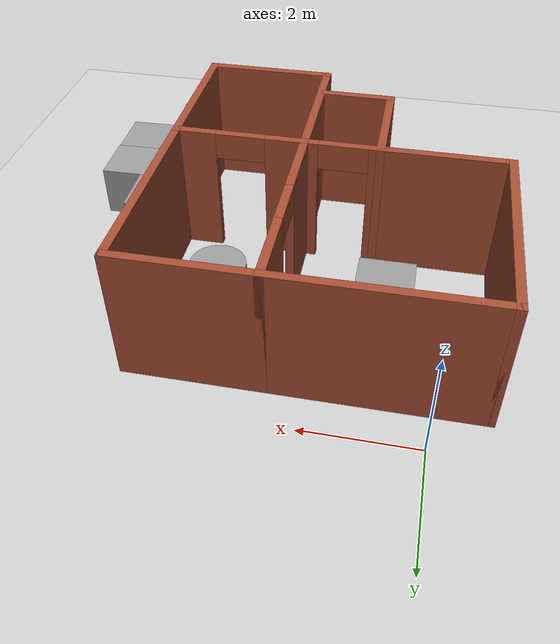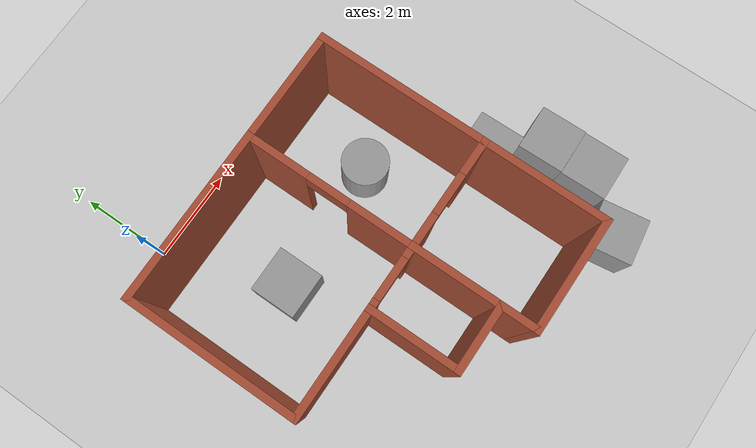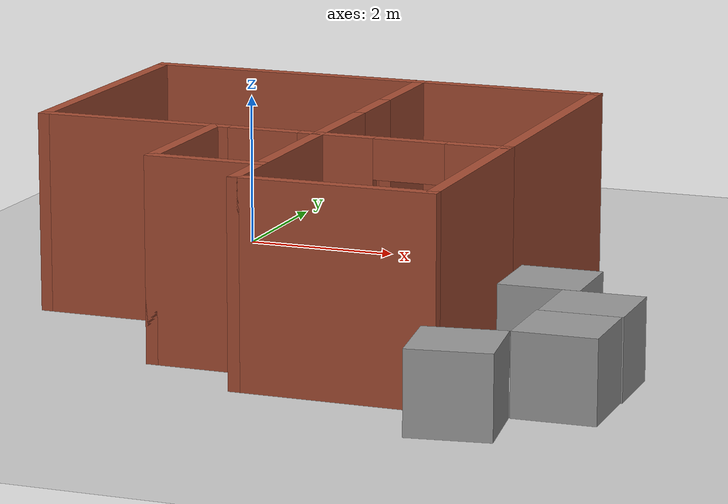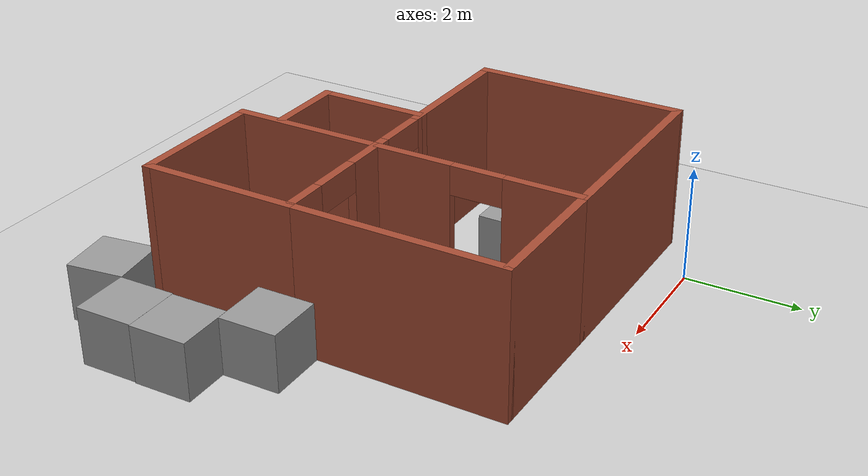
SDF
<sdf version="1.6">
 <world name="default">
  <light name="sun" type="directional">
   <pose>0 0 10 0 -0 0</pose>
   <diffuse>0.8 0.8 0.8 1</diffuse>
   <specular>0.2 0.2 0.2 1</specular>
   <attenuation>
    <range>1000</range>
    <constant>0.9</constant>
    <linear>0.01</linear>
    <quadratic>0.001</quadratic>
   </attenuation>
   <direction>-0.5 0.1 -0.9</direction>
  </light>
  <model name="ground_plane">
   <static>1</static>
   <link name="link">
    <collision name="collision">
     <geometry><plane><normal>0 0 1</normal><size>100 100</size></plane></geometry>
     <surface>
      <contact><collide_bitmask>65535</collide_bitmask></contact>
      <friction><ode><mu>100</mu><mu2>50</mu2></ode></friction>
     </surface>
    </collision>
    <visual name="visual">
     <cast_shadows>0</cast_shadows>
     <geometry><plane><normal>0 0 1</normal><size>100 100</size></plane></geometry>
     <material>
      <script><uri>file://media/materials/scripts/gazebo.material</uri><name>Gazebo/Grey</name></script>
     </material>
    </visual>
   </link>
  </model>
  <gravity>0 0 -9.8</gravity>
  <magnetic_field>6e-06 2.3e-05 -4.2e-05</magnetic_field>
  <atmosphere type="adiabatic"/>
  <physics name="default_physics" default="0" type="ode">
   <max_step_size>0.001</max_step_size>
   <real_time_factor>1</real_time_factor>
   <real_time_update_rate>1000</real_time_update_rate>
  </physics>
  <scene><ambient>0.4 0.4 0.4 1</ambient><background>0.7 0.7 0.7 1</background><shadows>1</shadows></scene>
  <audio><device>default</device></audio>
  <spherical_coordinates>
   <surface_model>EARTH_WGS84</surface_model>
   <latitude_deg>0</latitude_deg>
   <longitude_deg>0</longitude_deg>
   <elevation>0</elevation>
   <heading_deg>0</heading_deg>
  </spherical_coordinates>
  <model name="SmallHouse">
   <pose>2.015 -3.81 0 0 -0 0</pose>
   <link name="Wall_0">
    <collision name="Wall_0_Collision">
     <geometry><box><size>3.75 0.15 2.5</size></box></geometry>
     <pose>0 0 1.25 0 -0 0</pose>
    </collision>
    <visual name="Wall_0_Visual">
     <pose>0 0 1.25 0 -0 0</pose>
     <geometry><box><size>3.75 0.15 2.5</size></box></geometry>
     <material>
      <script><uri>file://media/materials/scripts/gazebo.material</uri><name>Gazebo/Bricks</name></script>
      <ambient>1 1 1 1</ambient>
     </material>
     <meta><layer>0</layer></meta>
    </visual>
    <pose>-1.175 3.1 0 0 -0 0</pose>
   </link>
   <link name="Wall_10">
    <pose>1.8 -0.5 0 0 -0 3.14159</pose>
    <visual name="Wall_10_Visual_0">
     <pose>-0.843815 0 1.25 0 -0 0</pose>
     <geometry><box><size>0.81237 0.15 2.5</size></box></geometry>
     <material>
      <script><uri>file://media/materials/scripts/gazebo.material</uri><name>Gazebo/Bricks</name></script>
      <ambient>1 1 1 1</ambient>
     </material>
     <meta><layer>0</layer></meta>
    </visual>
    <collision name="Wall_10_Collision_0">
     <geometry><box><size>0.81237 0.15 2.5</size></box></geometry>
     <pose>-0.843815 0 1.25 0 -0 0</pose>
    </collision>
    <visual name="Wall_10_Visual_1">
     <pose>0.856185 0 1.25 0 -0 0</pose>
     <geometry><box><size>0.78763 0.15 2.5</size></box></geometry>
     <material>
      <script><uri>file://media/materials/scripts/gazebo.material</uri><name>Gazebo/Bricks</name></script>
      <ambient>1 1 1 1</ambient>
     </material>
     <meta><layer>0</layer></meta>
    </visual>
    <collision name="Wall_10_Collision_1">
     <geometry><box><size>0.78763 0.15 2.5</size></box></geometry>
     <pose>0.856185 0 1.25 0 -0 0</pose>
    </collision>
    <visual name="Wall_10_Visual_2">
     <pose>0.01237 0 2.25 0 -0 0</pose>
     <geometry><box><size>0.9 0.15 0.5</size></box></geometry>
     <material>
      <script><uri>file://media/materials/scripts/gazebo.material</uri><name>Gazebo/Bricks</name></script>
      <ambient>1 1 1 1</ambient>
     </material>
     <meta><layer>0</layer></meta>
    </visual>
    <collision name="Wall_10_Collision_2">
     <geometry><box><size>0.9 0.15 0.5</size></box></geometry>
     <pose>0.01237 0 2.25 0 -0 0</pose>
    </collision>
   </link>
   <link name="Wall_12">
    <pose>-1.175 -0.5 0 0 -0 3.14159</pose>
    <visual name="Wall_12_Visual_0">
     <pose>-1.71232 0 1.25 0 -0 0</pose>
     <geometry><box><size>0.32537 0.15 2.5</size></box></geometry>
     <material>
      <script><uri>file://media/materials/scripts/gazebo.material</uri><name>Gazebo/Bricks</name></script>
      <ambient>1 1 1 1</ambient>
     </material>
     <meta><layer>0</layer></meta>
    </visual>
    <collision name="Wall_12_Collision_0">
     <geometry><box><size>0.32537 0.15 2.5</size></box></geometry>
     <pose>-1.71232 0 1.25 0 -0 0</pose>
    </collision>
    <visual name="Wall_12_Visual_1">
     <pose>0.612685 0 1.25 0 -0 0</pose>
     <geometry><box><size>2.52463 0.15 2.5</size></box></geometry>
     <material>
      <script><uri>file://media/materials/scripts/gazebo.material</uri><name>Gazebo/Bricks</name></script>
      <ambient>1 1 1 1</ambient>
     </material>
     <meta><layer>0</layer></meta>
    </visual>
    <collision name="Wall_12_Collision_1">
     <geometry><box><size>2.52463 0.15 2.5</size></box></geometry>
     <pose>0.612685 0 1.25 0 -0 0</pose>
    </collision>
    <visual name="Wall_12_Visual_2">
     <pose>-1.09963 0 2.25 0 -0 0</pose>
     <geometry><box><size>0.9 0.15 0.5</size></box></geometry>
     <material>
      <script><uri>file://media/materials/scripts/gazebo.material</uri><name>Gazebo/Bricks</name></script>
      <ambient>1 1 1 1</ambient>
     </material>
     <meta><layer>0</layer></meta>
    </visual>
    <collision name="Wall_12_Collision_2">
     <geometry><box><size>0.9 0.15 0.5</size></box></geometry>
     <pose>-1.09963 0 2.25 0 -0 0</pose>
    </collision>
   </link>
   <link name="Wall_16">
    <collision name="Wall_16_Collision">
     <geometry><box><size>2.75 0.15 2.5</size></box></geometry>
     <pose>0 0 1.25 0 -0 0</pose>
    </collision>
    <visual name="Wall_16_Visual">
     <pose>0 0 1.25 0 -0 0</pose>
     <geometry><box><size>2.75 0.15 2.5</size></box></geometry>
     <material>
      <script><uri>file://media/materials/scripts/gazebo.material</uri><name>Gazebo/Bricks</name></script>
      <ambient>1 1 1 1</ambient>
     </material>
     <meta><layer>0</layer></meta>
    </visual>
    <pose>2.975 -1.8 0 0 -0 -1.5708</pose>
   </link>
   <link name="Wall_17">
    <collision name="Wall_17_Collision">
     <geometry><box><size>2.5 0.15 2.5</size></box></geometry>
     <pose>0 0 1.25 0 -0 0</pose>
    </collision>
    <visual name="Wall_17_Visual">
     <pose>0 0 1.25 0 -0 0</pose>
     <geometry><box><size>2.5 0.15 2.5</size></box></geometry>
     <material>
      <script><uri>file://media/materials/scripts/gazebo.material</uri><name>Gazebo/Bricks</name></script>
      <ambient>1 1 1 1</ambient>
     </material>
     <meta><layer>0</layer></meta>
    </visual>
    <pose>1.8 -3.1 0 0 -0 3.14159</pose>
   </link>
   <link name="Wall_18">
    <collision name="Wall_18_Collision">
     <geometry><box><size>2.75 0.15 2.5</size></box></geometry>
     <pose>0 0 1.25 0 -0 0</pose>
    </collision>
    <visual name="Wall_18_Visual">
     <pose>0 0 1.25 0 -0 0</pose>
     <geometry><box><size>2.75 0.15 2.5</size></box></geometry>
     <material>
      <script><uri>file://media/materials/scripts/gazebo.material</uri><name>Gazebo/Bricks</name></script>
      <ambient>1 1 1 1</ambient>
     </material>
     <meta><layer>0</layer></meta>
    </visual>
    <pose>0.625 -1.8 0 0 -0 1.5708</pose>
   </link>
   <link name="Wall_21">
    <collision name="Wall_21_Collision">
     <geometry><box><size>2 0.15 2.5</size></box></geometry>
     <pose>0 0 1.25 0 -0 0</pose>
    </collision>
    <visual name="Wall_21_Visual">
     <pose>0 0 1.25 0 -0 0</pose>
     <geometry><box><size>2 0.15 2.5</size></box></geometry>
     <material>
      <script><uri>file://media/materials/scripts/gazebo.material</uri><name>Gazebo/Bricks</name></script>
      <ambient>1 1 1 1</ambient>
     </material>
     <meta><layer>0</layer></meta>
    </visual>
    <pose>-0.725 -1.425 0 0 -0 -1.5708</pose>
   </link>
   <link name="Wall_22">
    <collision name="Wall_22_Collision">
     <geometry><box><size>1.5 0.15 2.5</size></box></geometry>
     <pose>0 0 1.25 0 -0 0</pose>
    </collision>
    <visual name="Wall_22_Visual">
     <pose>0 0 1.25 0 -0 0</pose>
     <geometry><box><size>1.5 0.15 2.5</size></box></geometry>
     <material>
      <script><uri>file://media/materials/scripts/gazebo.material</uri><name>Gazebo/Bricks</name></script>
      <ambient>1 1 1 1</ambient>
     </material>
     <meta><layer>0</layer></meta>
    </visual>
    <pose>-0.05 -2.35 0 0 -0 0</pose>
   </link>
   <link name="Wall_3">
    <collision name="Wall_3_Collision">
     <geometry><box><size>3.75 0.15 2.5</size></box></geometry>
     <pose>0 0 1.25 0 -0 0</pose>
    </collision>
    <visual name="Wall_3_Visual">
     <pose>0 0 1.25 0 -0 0</pose>
     <geometry><box><size>3.75 0.15 2.5</size></box></geometry>
     <material>
      <script><uri>file://media/materials/scripts/gazebo.material</uri><name>Gazebo/Bricks</name></script>
      <ambient>1 1 1 1</ambient>
     </material>
     <meta><layer>0</layer></meta>
    </visual>
    <pose>-2.975 1.3 0 0 -0 -1.5708</pose>
   </link>
   <link name="Wall_5">
    <pose>0.625 1.3 0 0 -0 -1.5708</pose>
    <visual name="Wall_5_Visual_0">
     <pose>-1.17725 0 1.25 0 -0 0</pose>
     <geometry><box><size>1.3955 0.15 2.5</size></box></geometry>
     <material>
      <script><uri>file://media/materials/scripts/gazebo.material</uri><name>Gazebo/Bricks</name></script>
      <ambient>1 1 1 1</ambient>
     </material>
     <meta><layer>0</layer></meta>
    </visual>
    <collision name="Wall_5_Collision_0">
     <geometry><box><size>1.3955 0.15 2.5</size></box></geometry>
     <pose>-1.17725 0 1.25 0 -0 0</pose>
    </collision>
    <visual name="Wall_5_Visual_1">
     <pose>1.14775 0 1.25 0 -0 0</pose>
     <geometry><box><size>1.4545 0.15 2.5</size></box></geometry>
     <material>
      <script><uri>file://media/materials/scripts/gazebo.material</uri><name>Gazebo/Bricks</name></script>
      <ambient>1 1 1 1</ambient>
     </material>
     <meta><layer>0</layer></meta>
    </visual>
    <collision name="Wall_5_Collision_1">
     <geometry><box><size>1.4545 0.15 2.5</size></box></geometry>
     <pose>1.14775 0 1.25 0 -0 0</pose>
    </collision>
    <visual name="Wall_5_Visual_2">
     <pose>-0.0295 0 2.25 0 -0 0</pose>
     <geometry><box><size>0.9 0.15 0.5</size></box></geometry>
     <material>
      <script><uri>file://media/materials/scripts/gazebo.material</uri><name>Gazebo/Bricks</name></script>
      <ambient>1 1 1 1</ambient>
     </material>
     <meta><layer>0</layer></meta>
    </visual>
    <collision name="Wall_5_Collision_2">
     <geometry><box><size>0.9 0.15 0.5</size></box></geometry>
     <pose>-0.0295 0 2.25 0 -0 0</pose>
    </collision>
   </link>
   <link name="Wall_7">
    <collision name="Wall_7_Collision">
     <geometry><box><size>2.5 0.15 2.5</size></box></geometry>
     <pose>0 0 1.25 0 -0 0</pose>
    </collision>
    <visual name="Wall_7_Visual">
     <pose>0 0 1.25 0 -0 0</pose>
     <geometry><box><size>2.5 0.15 2.5</size></box></geometry>
     <material>
      <script><uri>file://media/materials/scripts/gazebo.material</uri><name>Gazebo/Bricks</name></script>
      <ambient>1 1 1 1</ambient>
     </material>
     <meta><layer>0</layer></meta>
    </visual>
    <pose>1.8 3.1 0 0 -0 0</pose>
   </link>
   <link name="Wall_8">
    <collision name="Wall_8_Collision">
     <geometry><box><size>3.75 0.15 2.5</size></box></geometry>
     <pose>0 0 1.25 0 -0 0</pose>
    </collision>
    <visual name="Wall_8_Visual">
     <pose>0 0 1.25 0 -0 0</pose>
     <geometry><box><size>3.75 0.15 2.5</size></box></geometry>
     <material>
      <script><uri>file://media/materials/scripts/gazebo.material</uri><name>Gazebo/Bricks</name></script>
      <ambient>1 1 1 1</ambient>
     </material>
     <meta><layer>0</layer></meta>
    </visual>
    <pose>2.975 1.3 0 0 -0 -1.5708</pose>
   </link>
   <static>1</static>
  </model>
  <model name="unit_box">
   <pose>0.931544 -2.61707 0.499995 1e-05 -0 0</pose>
   <link name="link">
    <inertial>
     <mass>1</mass>
     <inertia>
      <ixx>0.166667</ixx>
      <ixy>0</ixy>
      <ixz>0</ixz>
      <iyy>0.166667</iyy>
      <iyz>0</iyz>
      <izz>0.166667</izz>
     </inertia>
    </inertial>
    <collision name="collision"><geometry><box><size>1 1 1</size></box></geometry></collision>
    <visual name="visual">
     <geometry><box><size>1 1 1</size></box></geometry>
     <material>
      <script><name>Gazebo/Grey</name><uri>file://media/materials/scripts/gazebo.material</uri></script>
     </material>
    </visual>
   </link>
  </model>
  <model name="unit_cylinder">
   <pose>3.8299 -2.49775 0.499998 3e-06 -3e-06 0</pose>
   <link name="link">
    <inertial>
     <mass>1</mass>
     <inertia><ixx>0.145833</ixx><ixy>0</ixy><ixz>0</ixz><iyy>0.145833</iyy><iyz>0</iyz><izz>0.125</izz></inertia>
    </inertial>
    <collision name="collision">
     <geometry><cylinder><radius>0.5</radius><length>1</length></cylinder></geometry>
    </collision>
    <visual name="visual">
     <geometry><cylinder><radius>0.5</radius><length>1</length></cylinder></geometry>
     <material>
      <script><name>Gazebo/Grey</name><uri>file://media/materials/scripts/gazebo.material</uri></script>
     </material>
    </visual>
   </link>
  </model>
  <model name="unit_box_1">
   <pose>5.46729 -7.43501 0.5 0 -0 0.145514</pose>
   <link name="link">
    <inertial>
     <mass>1</mass>
     <inertia>
      <ixx>0.166667</ixx>
      <ixy>0</ixy>
      <ixz>0</ixz>
      <iyy>0.166667</iyy>
      <iyz>0</iyz>
      <izz>0.166667</izz>
     </inertia>
    </inertial>
    <collision name="collision"><geometry><box><size>1 1 1</size></box></geometry></collision>
    <visual name="visual">
     <geometry><box><size>1 1 1</size></box></geometry>
     <material>
      <script><name>Gazebo/Grey</name><uri>file://media/materials/scripts/gazebo.material</uri></script>
     </material>
    </visual>
   </link>
  </model>
  <model name="unit_box_0">
   <pose>5.57482 -4.37666 0.5 0 -0 0.018187</pose>
   <link name="link">
    <inertial>
     <mass>1</mass>
     <inertia>
      <ixx>0.166667</ixx>
      <ixy>0</ixy>
      <ixz>0</ixz>
      <iyy>0.166667</iyy>
      <iyz>0</iyz>
      <izz>0.166667</izz>
     </inertia>
    </inertial>
    <collision name="collision"><geometry><box><size>1 1 1</size></box></geometry></collision>
    <visual name="visual">
     <geometry><box><size>1 1 1</size></box></geometry>
     <material>
      <script><name>Gazebo/Grey</name><uri>file://media/materials/scripts/gazebo.material</uri></script>
     </material>
    </visual>
   </link>
  </model>
  <model name="unit_box_2">
   <pose>6.38548 -5.36273 0.5 0 -0 0.020915</pose>
   <link name="link">
    <inertial>
     <mass>1</mass>
     <inertia>
      <ixx>0.166667</ixx>
      <ixy>0</ixy>
      <ixz>0</ixz>
      <iyy>0.166667</iyy>
      <iyz>0</iyz>
      <izz>0.166667</izz>
     </inertia>
    </inertial>
    <collision name="collision"><geometry><box><size>1 1 1</size></box></geometry></collision>
    <visual name="visual">
     <geometry><box><size>1 1 1</size></box></geometry>
     <material>
      <script><name>Gazebo/Grey</name><uri>file://media/materials/scripts/gazebo.material</uri></script>
     </material>
    </visual>
   </link>
  </model>
  <model name="unit_box_3">
   <pose>6.38879 -6.36337 0.5 0 -0 0.020814</pose>
   <link name="link">
    <inertial>
     <mass>1</mass>
     <inertia>
      <ixx>0.166667</ixx>
      <ixy>0</ixy>
      <ixz>0</ixz>
      <iyy>0.166667</iyy>
      <iyz>0</iyz>
      <izz>0.166667</izz>
     </inertia>
    </inertial>
    <collision name="collision"><geometry><box><size>1 1 1</size></box></geometry></collision>
    <visual name="visual">
     <geometry><box><size>1 1 1</size></box></geometry>
     <material>
      <script><name>Gazebo/Grey</name><uri>file://media/materials/scripts/gazebo.material</uri></script>
     </material>
    </visual>
   </link>
  </model>
 </world>
</sdf>
